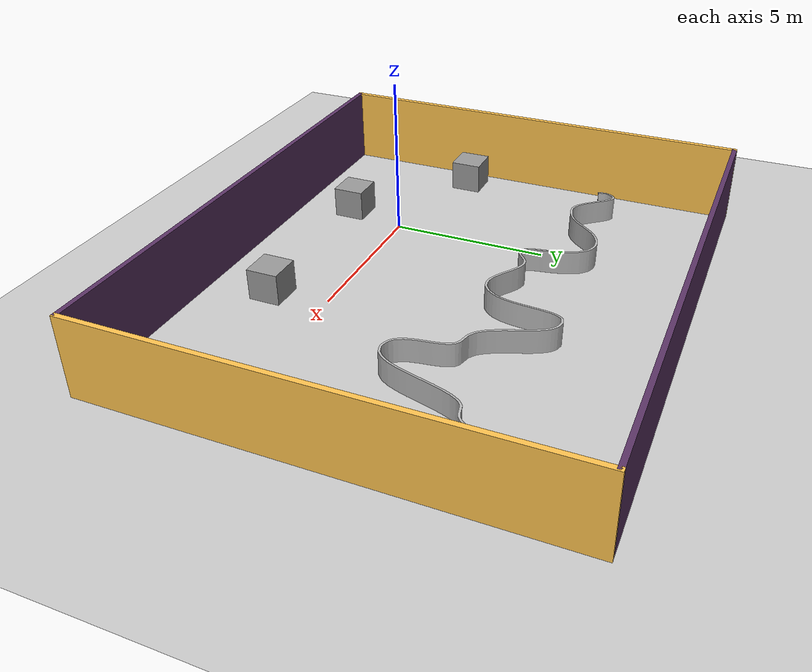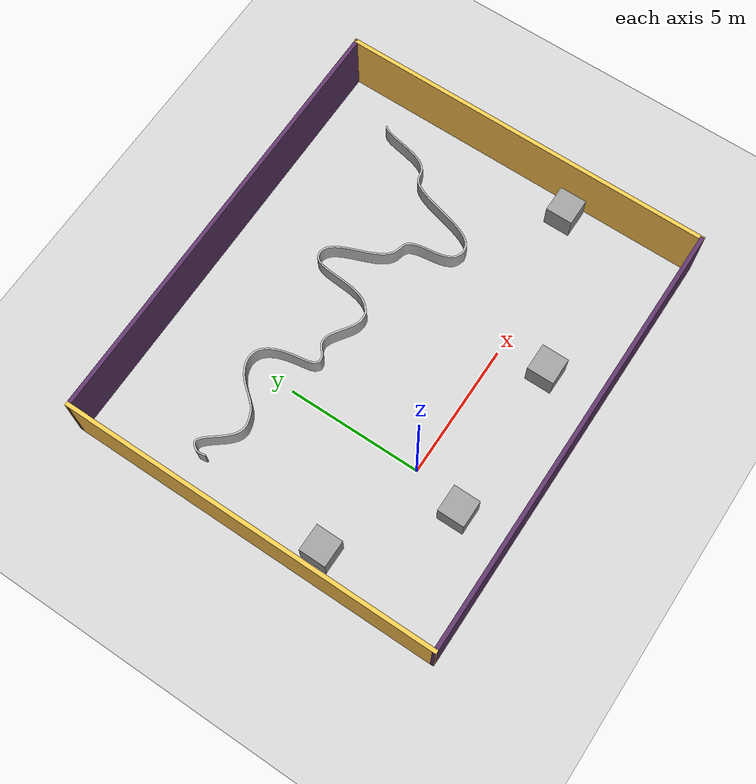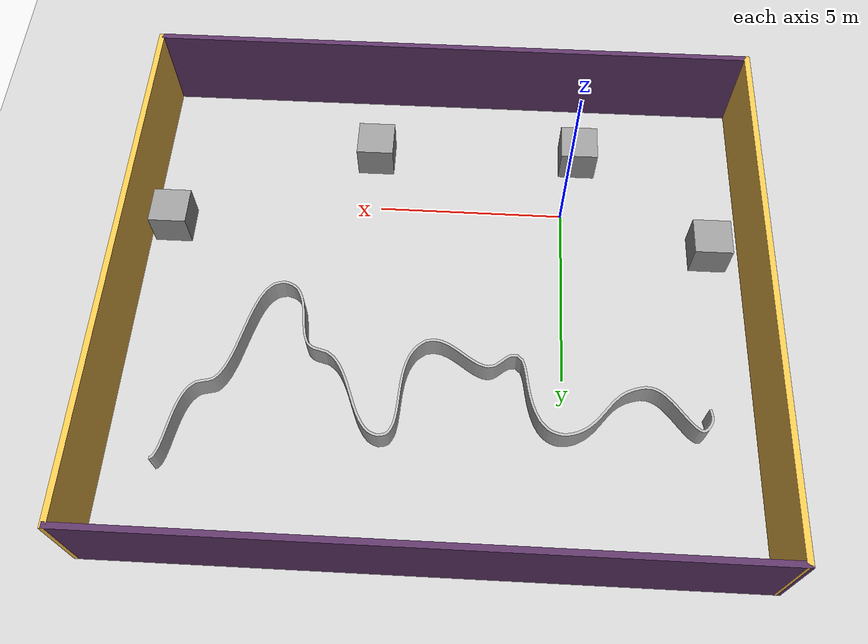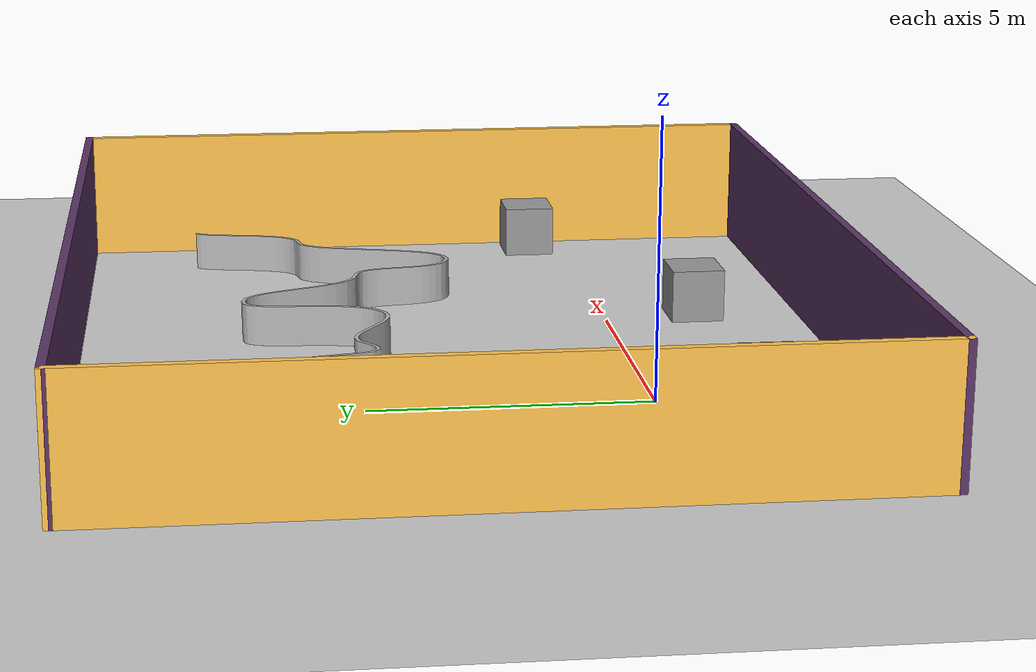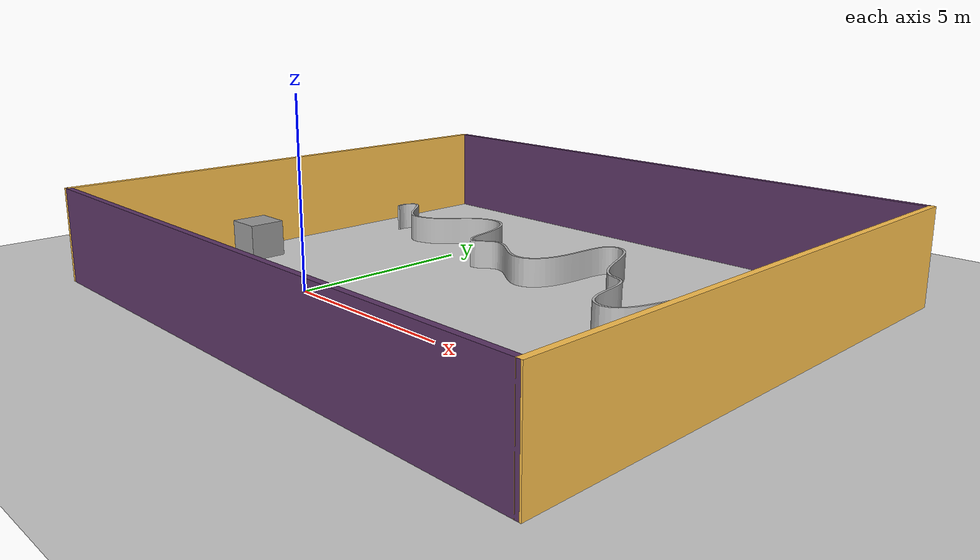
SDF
<sdf version="1.6">
 <world name="default">
  <model name="ground_plane">
   <static>1</static>
   <link name="link">
    <collision name="collision">
     <geometry><plane><normal>0 0 1</normal><size>100 100</size></plane></geometry>
     <surface>
      <contact><collide_bitmask>65535</collide_bitmask></contact>
      <friction><ode><mu>100</mu><mu2>50</mu2></ode></friction>
     </surface>
    </collision>
    <visual name="visual">
     <cast_shadows>0</cast_shadows>
     <geometry><plane><normal>0 0 1</normal><size>100 100</size></plane></geometry>
     <material>
      <script><uri>file://media/materials/scripts/gazebo.material</uri><name>Gazebo/Grey</name></script>
     </material>
    </visual>
   </link>
  </model>
  <model name="blender_wall">
   <static>true</static>
   <link name="body">
    <collision name="collision">
     <geometry><mesh><uri>model://walls/curved_wall_purple.stl</uri></mesh></geometry>
    </collision>
    <visual name="visual">
     <geometry><mesh><uri>model://walls/curved_wall_purple.stl</uri><scale>1.0 1.0 1.0</scale></mesh></geometry>
    </visual>
    <inertial>
     <mass>1</mass>
     <inertia><ixx>0.145833</ixx><ixy>0</ixy><ixz>0</ixz><iyy>0.145833</iyy><iyz>0</iyz><izz>0.125</izz></inertia>
    </inertial>
   </link>
  </model>
  <light name="sun" type="directional">
   <pose>0 0 10 0 -0 0</pose>
   <diffuse>0.8 0.8 0.8 1</diffuse>
   <specular>0.2 0.2 0.2 1</specular>
   <attenuation>
    <range>1000</range>
    <constant>0.9</constant>
    <linear>0.01</linear>
    <quadratic>0.001</quadratic>
   </attenuation>
   <direction>-0.5 0.1 -0.9</direction>
  </light>
  <gravity>0 0 -9.8</gravity>
  <magnetic_field>6e-06 2.3e-05 -4.2e-05</magnetic_field>
  <atmosphere type="adiabatic"/>
  <physics name="default_physics" default="0" type="ode">
   <max_step_size>0.001</max_step_size>
   <real_time_factor>1</real_time_factor>
   <real_time_update_rate>1000</real_time_update_rate>
  </physics>
  <scene><ambient>0.4 0.4 0.4 1</ambient><background>0.7 0.7 0.7 1</background><shadows>1</shadows></scene>
  <audio><device>default</device></audio>
  <spherical_coordinates>
   <surface_model>EARTH_WGS84</surface_model>
   <latitude_deg>0</latitude_deg>
   <longitude_deg>0</longitude_deg>
   <elevation>0</elevation>
   <heading_deg>0</heading_deg>
  </spherical_coordinates>
  <model name="purple_wall">
   <pose>3.21419 3.10392 0 0 -0 0</pose>
   <link name="Wall_3">
    <collision name="Wall_3_Collision">
     <geometry><box><size>14 0.15 2.5</size></box></geometry>
     <pose>0 0 1.25 0 -0 0</pose>
    </collision>
    <visual name="Wall_3_Visual">
     <pose>0 0 1.25 0 -0 0</pose>
     <geometry><box><size>14 0.15 2.5</size></box></geometry>
     <material>
      <script><uri>file://media/materials/scripts/gazebo.material</uri><name>Gazebo/Grey</name></script>
      <ambient>1 0.764706 0.305882 1</ambient>
     </material>
     <meta><layer>0</layer></meta>
    </visual>
    <pose>-8.10533 0.006068 0 0 -0 1.5708</pose>
   </link>
   <link name="Wall_6">
    <collision name="Wall_6_Collision">
     <geometry><box><size>16.3203 0.15 2.5</size></box></geometry>
     <pose>0 0 1.25 0 -0 0</pose>
    </collision>
    <visual name="Wall_6_Visual">
     <pose>0 0 1.25 0 -0 0</pose>
     <geometry><box><size>16.3203 0.15 2.5</size></box></geometry>
     <material>
      <script><uri>file://media/materials/scripts/gazebo.material</uri><name>Gazebo/Grey</name></script>
      <ambient>0.360784 0.207843 0.4 1</ambient>
     </material>
     <meta><layer>0</layer></meta>
    </visual>
    <pose>-0.0202 6.925 0 0 -0 -0.000751</pose>
   </link>
   <link name="Wall_7">
    <collision name="Wall_7_Collision">
     <geometry><box><size>14 0.15 2.5</size></box></geometry>
     <pose>0 0 1.25 0 -0 0</pose>
    </collision>
    <visual name="Wall_7_Visual">
     <pose>0 0 1.25 0 -0 0</pose>
     <geometry><box><size>14 0.15 2.5</size></box></geometry>
     <material>
      <script><uri>file://media/materials/scripts/gazebo.material</uri><name>Gazebo/Grey</name></script>
      <ambient>1 0.764706 0.305882 1</ambient>
     </material>
     <meta><layer>0</layer></meta>
    </visual>
    <pose>8.10539 -0.006068 0 0 -0 -1.5708</pose>
   </link>
   <link name="Wall_8">
    <collision name="Wall_8_Collision">
     <geometry><box><size>16.3203 0.15 2.5</size></box></geometry>
     <pose>0 0 1.25 0 -0 0</pose>
    </collision>
    <visual name="Wall_8_Visual">
     <pose>0 0 1.25 0 -0 0</pose>
     <geometry><box><size>16.3203 0.15 2.5</size></box></geometry>
     <material>
      <script><uri>file://media/materials/scripts/gazebo.material</uri><name>Gazebo/Grey</name></script>
      <ambient>0.360784 0.207843 0.4 1</ambient>
     </material>
     <meta><layer>0</layer></meta>
    </visual>
    <pose>-0.0202 -6.925 0 0 -0 3.14084</pose>
   </link>
   <static>1</static>
  </model>
  <model name="unit_box">
   <pose>-3.93396 1.05389 0.499995 0 1e-05 0</pose>
   <link name="link">
    <inertial>
     <mass>1</mass>
     <inertia>
      <ixx>0.166667</ixx>
      <ixy>0</ixy>
      <ixz>0</ixz>
      <iyy>0.166667</iyy>
      <iyz>0</iyz>
      <izz>0.166667</izz>
     </inertia>
    </inertial>
    <collision name="collision"><geometry><box><size>1 1 1</size></box></geometry></collision>
    <visual name="visual">
     <geometry><box><size>1 1 1</size></box></geometry>
     <material>
      <script><name>Gazebo/Grey</name><uri>file://media/materials/scripts/gazebo.material</uri></script>
     </material>
    </visual>
   </link>
  </model>
  <model name="unit_box_0">
   <pose>-0.44513 -1.87505 0.499995 -1e-05 -0 -0</pose>
   <link name="link">
    <inertial>
     <mass>1</mass>
     <inertia>
      <ixx>0.166667</ixx>
      <ixy>0</ixy>
      <ixz>0</ixz>
      <iyy>0.166667</iyy>
      <iyz>0</iyz>
      <izz>0.166667</izz>
     </inertia>
    </inertial>
    <collision name="collision"><geometry><box><size>1 1 1</size></box></geometry></collision>
    <visual name="visual">
     <geometry><box><size>1 1 1</size></box></geometry>
     <material>
      <script><name>Gazebo/Grey</name><uri>file://media/materials/scripts/gazebo.material</uri></script>
     </material>
    </visual>
   </link>
  </model>
  <model name="unit_box_1">
   <pose>5.24284 -1.72563 0.499995 0 1e-05 0</pose>
   <link name="link">
    <inertial>
     <mass>1</mass>
     <inertia>
      <ixx>0.166667</ixx>
      <ixy>0</ixy>
      <ixz>0</ixz>
      <iyy>0.166667</iyy>
      <iyz>0</iyz>
      <izz>0.166667</izz>
     </inertia>
    </inertial>
    <collision name="collision"><geometry><box><size>1 1 1</size></box></geometry></collision>
    <visual name="visual">
     <geometry><box><size>1 1 1</size></box></geometry>
     <material>
      <script><name>Gazebo/Grey</name><uri>file://media/materials/scripts/gazebo.material</uri></script>
     </material>
    </visual>
   </link>
  </model>
  <model name="unit_box_2">
   <pose>10.6165 0.799693 0.499995 -1e-05 -0 0</pose>
   <link name="link">
    <inertial>
     <mass>1</mass>
     <inertia>
      <ixx>0.166667</ixx>
      <ixy>0</ixy>
      <ixz>0</ixz>
      <iyy>0.166667</iyy>
      <iyz>0</iyz>
      <izz>0.166667</izz>
     </inertia>
    </inertial>
    <collision name="collision"><geometry><box><size>1 1 1</size></box></geometry></collision>
    <visual name="visual">
     <geometry><box><size>1 1 1</size></box></geometry>
     <material>
      <script><name>Gazebo/Grey</name><uri>file://media/materials/scripts/gazebo.material</uri></script>
     </material>
    </visual>
   </link>
  </model>
 </world>
</sdf>
